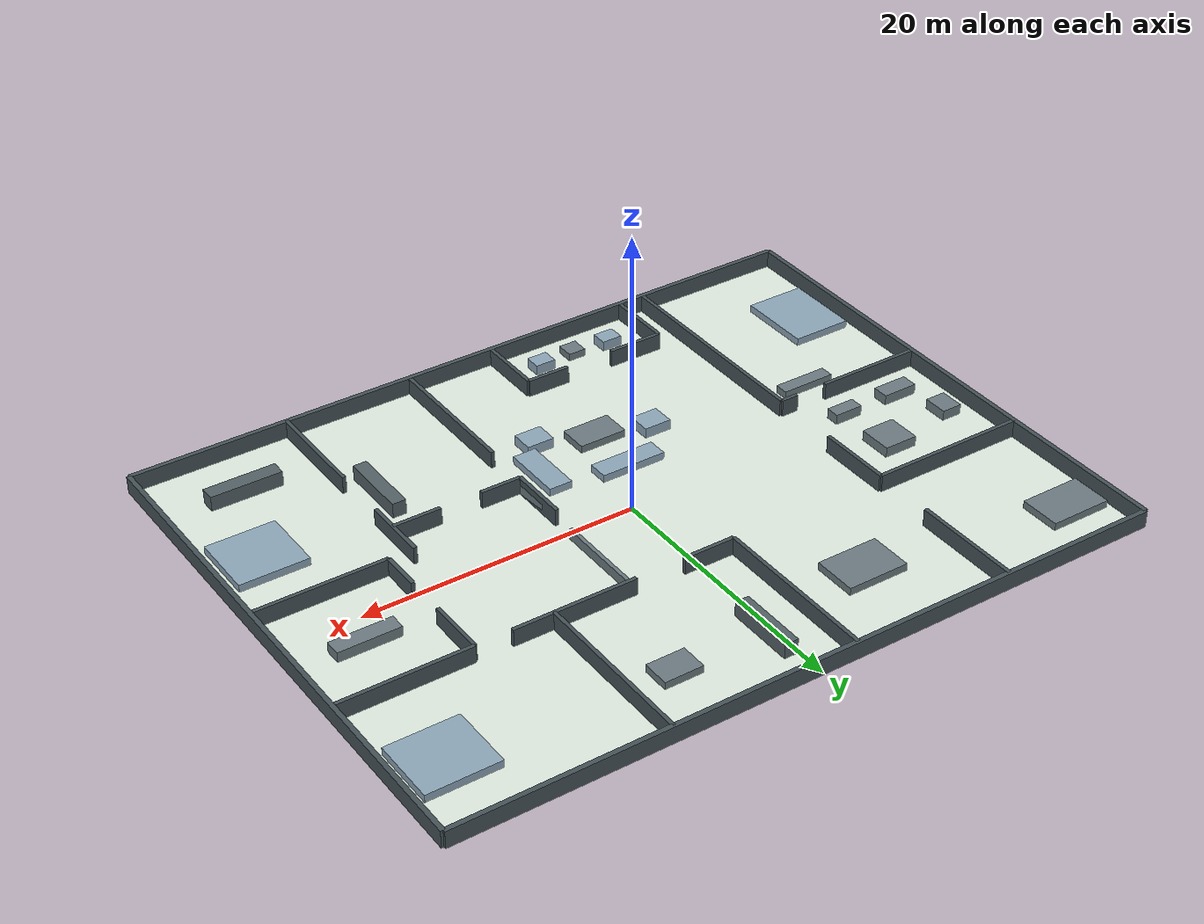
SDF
<?xml version="1.0" ?>
<sdf version="1.6">
  <world name="reference_family_flat">
    <gravity>0 0 -9.8</gravity>
    <scene>
      <ambient>0.65 0.65 0.65 1</ambient>
      <background>0.78 0.84 0.88 1</background>
    </scene>
    <include>
      <uri>model://sun</uri>
    </include>
    <model name="reference_family_flat_floor">
      <static>true</static>
      <pose>0.000 0.000 -0.025 0 0 0</pose>
      <link name="floor_link">
        <collision name="floor_collision">
          <geometry>
            <box><size>52.000 40.000 0.050</size></box>
          </geometry>
        </collision>
        <visual name="floor_visual">
          <geometry>
            <box><size>52.000 40.000 0.050</size></box>
          </geometry>
          <material><ambient>0.88 0.92 0.88 1</ambient><diffuse>0.88 0.92 0.88 1</diffuse></material>
        </visual>
      </link>
    </model>
    <model name="outer_north">
      <static>true</static>
      <pose>0.000 20.000 0.625 0 0 0</pose>
      <link name="outer_north_link">
        <collision name="outer_north_collision">
          <geometry>
            <box><size>52.000 0.350 1.250</size></box>
          </geometry>
        </collision>
        <visual name="outer_north_visual">
          <geometry>
            <box><size>52.000 0.350 1.250</size></box>
          </geometry>
          <material><ambient>0.27 0.32 0.34 1</ambient><diffuse>0.27 0.32 0.34 1</diffuse></material>
        </visual>
      </link>
    </model>
    <model name="outer_south">
      <static>true</static>
      <pose>0.000 -20.000 0.625 0 0 0</pose>
      <link name="outer_south_link">
        <collision name="outer_south_collision">
          <geometry>
            <box><size>52.000 0.350 1.250</size></box>
          </geometry>
        </collision>
        <visual name="outer_south_visual">
          <geometry>
            <box><size>52.000 0.350 1.250</size></box>
          </geometry>
          <material><ambient>0.27 0.32 0.34 1</ambient><diffuse>0.27 0.32 0.34 1</diffuse></material>
        </visual>
      </link>
    </model>
    <model name="outer_west">
      <static>true</static>
      <pose>-26.000 0.000 0.625 0 0 0</pose>
      <link name="outer_west_link">
        <collision name="outer_west_collision">
          <geometry>
            <box><size>0.350 40.000 1.250</size></box>
          </geometry>
        </collision>
        <visual name="outer_west_visual">
          <geometry>
            <box><size>0.350 40.000 1.250</size></box>
          </geometry>
          <material><ambient>0.27 0.32 0.34 1</ambient><diffuse>0.27 0.32 0.34 1</diffuse></material>
        </visual>
      </link>
    </model>
    <model name="outer_east">
      <static>true</static>
      <pose>26.000 0.000 0.625 0 0 0</pose>
      <link name="outer_east_link">
        <collision name="outer_east_collision">
          <geometry>
            <box><size>0.350 40.000 1.250</size></box>
          </geometry>
        </collision>
        <visual name="outer_east_visual">
          <geometry>
            <box><size>0.350 40.000 1.250</size></box>
          </geometry>
          <material><ambient>0.27 0.32 0.34 1</ambient><diffuse>0.27 0.32 0.34 1</diffuse></material>
        </visual>
      </link>
    </model>
    <model name="ref_left_wing_inner_wall_s">
      <static>true</static>
      <pose>-14.500 -11.600 0.625 0 0 0</pose>
      <link name="ref_left_wing_inner_wall_s_link">
        <collision name="ref_left_wing_inner_wall_s_collision">
          <geometry>
            <box><size>0.280 16.800 1.250</size></box>
          </geometry>
        </collision>
        <visual name="ref_left_wing_inner_wall_s_visual">
          <geometry>
            <box><size>0.280 16.800 1.250</size></box>
          </geometry>
          <material><ambient>0.27 0.32 0.34 1</ambient><diffuse>0.27 0.32 0.34 1</diffuse></material>
        </visual>
      </link>
    </model>
    <model name="ref_left_wing_inner_wall_m">
      <static>true</static>
      <pose>-14.500 4.750 0.625 0 0 0</pose>
      <link name="ref_left_wing_inner_wall_m_link">
        <collision name="ref_left_wing_inner_wall_m_collision">
          <geometry>
            <box><size>0.280 5.500 1.250</size></box>
          </geometry>
        </collision>
        <visual name="ref_left_wing_inner_wall_m_visual">
          <geometry>
            <box><size>0.280 5.500 1.250</size></box>
          </geometry>
          <material><ambient>0.27 0.32 0.34 1</ambient><diffuse>0.27 0.32 0.34 1</diffuse></material>
        </visual>
      </link>
    </model>
    <model name="ref_left_wing_inner_wall_n">
      <static>true</static>
      <pose>-14.500 16.000 0.625 0 0 0</pose>
      <link name="ref_left_wing_inner_wall_n_link">
        <collision name="ref_left_wing_inner_wall_n_collision">
          <geometry>
            <box><size>0.280 8.000 1.250</size></box>
          </geometry>
        </collision>
        <visual name="ref_left_wing_inner_wall_n_visual">
          <geometry>
            <box><size>0.280 8.000 1.250</size></box>
          </geometry>
          <material><ambient>0.27 0.32 0.34 1</ambient><diffuse>0.27 0.32 0.34 1</diffuse></material>
        </visual>
      </link>
    </model>
    <model name="ref_kitchen_bath_wall">
      <static>true</static>
      <pose>-20.250 7.500 0.625 0 0 0</pose>
      <link name="ref_kitchen_bath_wall_link">
        <collision name="ref_kitchen_bath_wall_collision">
          <geometry>
            <box><size>11.500 0.280 1.250</size></box>
          </geometry>
        </collision>
        <visual name="ref_kitchen_bath_wall_visual">
          <geometry>
            <box><size>11.500 0.280 1.250</size></box>
          </geometry>
          <material><ambient>0.27 0.32 0.34 1</ambient><diffuse>0.27 0.32 0.34 1</diffuse></material>
        </visual>
      </link>
    </model>
    <model name="ref_bath_guest_wall_w">
      <static>true</static>
      <pose>-22.100 -3.200 0.625 0 0 0</pose>
      <link name="ref_bath_guest_wall_w_link">
        <collision name="ref_bath_guest_wall_w_collision">
          <geometry>
            <box><size>7.800 0.280 1.250</size></box>
          </geometry>
        </collision>
        <visual name="ref_bath_guest_wall_w_visual">
          <geometry>
            <box><size>7.800 0.280 1.250</size></box>
          </geometry>
          <material><ambient>0.27 0.32 0.34 1</ambient><diffuse>0.27 0.32 0.34 1</diffuse></material>
        </visual>
      </link>
    </model>
    <model name="ref_bath_guest_wall_e">
      <static>true</static>
      <pose>-15.150 -3.200 0.625 0 0 0</pose>
      <link name="ref_bath_guest_wall_e_link">
        <collision name="ref_bath_guest_wall_e_collision">
          <geometry>
            <box><size>1.300 0.280 1.250</size></box>
          </geometry>
        </collision>
        <visual name="ref_bath_guest_wall_e_visual">
          <geometry>
            <box><size>1.300 0.280 1.250</size></box>
          </geometry>
          <material><ambient>0.27 0.32 0.34 1</ambient><diffuse>0.27 0.32 0.34 1</diffuse></material>
        </visual>
      </link>
    </model>
    <model name="ref_dining_study_wall">
      <static>true</static>
      <pose>-2.600 13.750 0.625 0 0 0</pose>
      <link name="ref_dining_study_wall_link">
        <collision name="ref_dining_study_wall_collision">
          <geometry>
            <box><size>0.280 12.500 1.250</size></box>
          </geometry>
        </collision>
        <visual name="ref_dining_study_wall_visual">
          <geometry>
            <box><size>0.280 12.500 1.250</size></box>
          </geometry>
          <material><ambient>0.27 0.32 0.34 1</ambient><diffuse>0.27 0.32 0.34 1</diffuse></material>
        </visual>
      </link>
    </model>
    <model name="ref_study_second_bed_wall">
      <static>true</static>
      <pose>10.800 13.750 0.625 0 0 0</pose>
      <link name="ref_study_second_bed_wall_link">
        <collision name="ref_study_second_bed_wall_collision">
          <geometry>
            <box><size>0.280 12.500 1.250</size></box>
          </geometry>
        </collision>
        <visual name="ref_study_second_bed_wall_visual">
          <geometry>
            <box><size>0.280 12.500 1.250</size></box>
          </geometry>
          <material><ambient>0.27 0.32 0.34 1</ambient><diffuse>0.27 0.32 0.34 1</diffuse></material>
        </visual>
      </link>
    </model>
    <model name="ref_study_bottom_wall_w">
      <static>true</static>
      <pose>-0.700 7.500 0.625 0 0 0</pose>
      <link name="ref_study_bottom_wall_w_link">
        <collision name="ref_study_bottom_wall_w_collision">
          <geometry>
            <box><size>3.800 0.280 1.250</size></box>
          </geometry>
        </collision>
        <visual name="ref_study_bottom_wall_w_visual">
          <geometry>
            <box><size>3.800 0.280 1.250</size></box>
          </geometry>
          <material><ambient>0.27 0.32 0.34 1</ambient><diffuse>0.27 0.32 0.34 1</diffuse></material>
        </visual>
      </link>
    </model>
    <model name="ref_study_bottom_wall_e">
      <static>true</static>
      <pose>7.800 7.500 0.625 0 0 0</pose>
      <link name="ref_study_bottom_wall_e_link">
        <collision name="ref_study_bottom_wall_e_collision">
          <geometry>
            <box><size>6.000 0.280 1.250</size></box>
          </geometry>
        </collision>
        <visual name="ref_study_bottom_wall_e_visual">
          <geometry>
            <box><size>6.000 0.280 1.250</size></box>
          </geometry>
          <material><ambient>0.27 0.32 0.34 1</ambient><diffuse>0.27 0.32 0.34 1</diffuse></material>
        </visual>
      </link>
    </model>
    <model name="ref_second_bed_bottom_wall_w">
      <static>true</static>
      <pose>12.300 7.500 0.625 0 0 0</pose>
      <link name="ref_second_bed_bottom_wall_w_link">
        <collision name="ref_second_bed_bottom_wall_w_collision">
          <geometry>
            <box><size>3.000 0.280 1.250</size></box>
          </geometry>
        </collision>
        <visual name="ref_second_bed_bottom_wall_w_visual">
          <geometry>
            <box><size>3.000 0.280 1.250</size></box>
          </geometry>
          <material><ambient>0.27 0.32 0.34 1</ambient><diffuse>0.27 0.32 0.34 1</diffuse></material>
        </visual>
      </link>
    </model>
    <model name="ref_second_bed_bottom_wall_e">
      <static>true</static>
      <pose>21.200 7.500 0.625 0 0 0</pose>
      <link name="ref_second_bed_bottom_wall_e_link">
        <collision name="ref_second_bed_bottom_wall_e_collision">
          <geometry>
            <box><size>9.600 0.280 1.250</size></box>
          </geometry>
        </collision>
        <visual name="ref_second_bed_bottom_wall_e_visual">
          <geometry>
            <box><size>9.600 0.280 1.250</size></box>
          </geometry>
          <material><ambient>0.27 0.32 0.34 1</ambient><diffuse>0.27 0.32 0.34 1</diffuse></material>
        </visual>
      </link>
    </model>
    <model name="ref_closet_top_wall">
      <static>true</static>
      <pose>21.200 7.500 0.625 0 0 0</pose>
      <link name="ref_closet_top_wall_link">
        <collision name="ref_closet_top_wall_collision">
          <geometry>
            <box><size>9.600 0.280 1.250</size></box>
          </geometry>
        </collision>
        <visual name="ref_closet_top_wall_visual">
          <geometry>
            <box><size>9.600 0.280 1.250</size></box>
          </geometry>
          <material><ambient>0.27 0.32 0.34 1</ambient><diffuse>0.27 0.32 0.34 1</diffuse></material>
        </visual>
      </link>
    </model>
    <model name="ref_closet_master_wall">
      <static>true</static>
      <pose>21.200 -2.800 0.625 0 0 0</pose>
      <link name="ref_closet_master_wall_link">
        <collision name="ref_closet_master_wall_collision">
          <geometry>
            <box><size>9.600 0.280 1.250</size></box>
          </geometry>
        </collision>
        <visual name="ref_closet_master_wall_visual">
          <geometry>
            <box><size>9.600 0.280 1.250</size></box>
          </geometry>
          <material><ambient>0.27 0.32 0.34 1</ambient><diffuse>0.27 0.32 0.34 1</diffuse></material>
        </visual>
      </link>
    </model>
    <model name="ref_closet_living_wall_s">
      <static>true</static>
      <pose>16.400 -1.300 0.625 0 0 0</pose>
      <link name="ref_closet_living_wall_s_link">
        <collision name="ref_closet_living_wall_s_collision">
          <geometry>
            <box><size>0.280 3.000 1.250</size></box>
          </geometry>
        </collision>
        <visual name="ref_closet_living_wall_s_visual">
          <geometry>
            <box><size>0.280 3.000 1.250</size></box>
          </geometry>
          <material><ambient>0.27 0.32 0.34 1</ambient><diffuse>0.27 0.32 0.34 1</diffuse></material>
        </visual>
      </link>
    </model>
    <model name="ref_closet_living_wall_n">
      <static>true</static>
      <pose>16.400 5.350 0.625 0 0 0</pose>
      <link name="ref_closet_living_wall_n_link">
        <collision name="ref_closet_living_wall_n_collision">
          <geometry>
            <box><size>0.280 4.300 1.250</size></box>
          </geometry>
        </collision>
        <visual name="ref_closet_living_wall_n_visual">
          <geometry>
            <box><size>0.280 4.300 1.250</size></box>
          </geometry>
          <material><ambient>0.27 0.32 0.34 1</ambient><diffuse>0.27 0.32 0.34 1</diffuse></material>
        </visual>
      </link>
    </model>
    <model name="ref_entry_left_wall_s">
      <static>true</static>
      <pose>5.000 -14.500 0.625 0 0 0</pose>
      <link name="ref_entry_left_wall_s_link">
        <collision name="ref_entry_left_wall_s_collision">
          <geometry>
            <box><size>0.280 11.000 1.250</size></box>
          </geometry>
        </collision>
        <visual name="ref_entry_left_wall_s_visual">
          <geometry>
            <box><size>0.280 11.000 1.250</size></box>
          </geometry>
          <material><ambient>0.27 0.32 0.34 1</ambient><diffuse>0.27 0.32 0.34 1</diffuse></material>
        </visual>
      </link>
    </model>
    <model name="ref_entry_left_wall_n">
      <static>true</static>
      <pose>5.000 -3.400 0.625 0 0 0</pose>
      <link name="ref_entry_left_wall_n_link">
        <collision name="ref_entry_left_wall_n_collision">
          <geometry>
            <box><size>0.280 4.400 1.250</size></box>
          </geometry>
        </collision>
        <visual name="ref_entry_left_wall_n_visual">
          <geometry>
            <box><size>0.280 4.400 1.250</size></box>
          </geometry>
          <material><ambient>0.27 0.32 0.34 1</ambient><diffuse>0.27 0.32 0.34 1</diffuse></material>
        </visual>
      </link>
    </model>
    <model name="ref_entry_right_wall_s">
      <static>true</static>
      <pose>14.500 -16.000 0.625 0 0 0</pose>
      <link name="ref_entry_right_wall_s_link">
        <collision name="ref_entry_right_wall_s_collision">
          <geometry>
            <box><size>0.280 8.000 1.250</size></box>
          </geometry>
        </collision>
        <visual name="ref_entry_right_wall_s_visual">
          <geometry>
            <box><size>0.280 8.000 1.250</size></box>
          </geometry>
          <material><ambient>0.27 0.32 0.34 1</ambient><diffuse>0.27 0.32 0.34 1</diffuse></material>
        </visual>
      </link>
    </model>
    <model name="ref_entry_right_wall_n">
      <static>true</static>
      <pose>14.500 -5.300 0.625 0 0 0</pose>
      <link name="ref_entry_right_wall_n_link">
        <collision name="ref_entry_right_wall_n_collision">
          <geometry>
            <box><size>0.280 5.000 1.250</size></box>
          </geometry>
        </collision>
        <visual name="ref_entry_right_wall_n_visual">
          <geometry>
            <box><size>0.280 5.000 1.250</size></box>
          </geometry>
          <material><ambient>0.27 0.32 0.34 1</ambient><diffuse>0.27 0.32 0.34 1</diffuse></material>
        </visual>
      </link>
    </model>
    <model name="ref_entry_top_wall_w">
      <static>true</static>
      <pose>6.500 -5.600 0.625 0 0 0</pose>
      <link name="ref_entry_top_wall_w_link">
        <collision name="ref_entry_top_wall_w_collision">
          <geometry>
            <box><size>3.000 0.280 1.250</size></box>
          </geometry>
        </collision>
        <visual name="ref_entry_top_wall_w_visual">
          <geometry>
            <box><size>3.000 0.280 1.250</size></box>
          </geometry>
          <material><ambient>0.27 0.32 0.34 1</ambient><diffuse>0.27 0.32 0.34 1</diffuse></material>
        </visual>
      </link>
    </model>
    <model name="ref_entry_top_wall_e">
      <static>true</static>
      <pose>12.750 -5.600 0.625 0 0 0</pose>
      <link name="ref_entry_top_wall_e_link">
        <collision name="ref_entry_top_wall_e_collision">
          <geometry>
            <box><size>3.500 0.280 1.250</size></box>
          </geometry>
        </collision>
        <visual name="ref_entry_top_wall_e_visual">
          <geometry>
            <box><size>3.500 0.280 1.250</size></box>
          </geometry>
          <material><ambient>0.27 0.32 0.34 1</ambient><diffuse>0.27 0.32 0.34 1</diffuse></material>
        </visual>
      </link>
    </model>
    <model name="ref_balcony_top_wall_w">
      <static>true</static>
      <pose>-10.450 -15.000 0.625 0 0 0</pose>
      <link name="ref_balcony_top_wall_w_link">
        <collision name="ref_balcony_top_wall_w_collision">
          <geometry>
            <box><size>4.100 0.280 1.250</size></box>
          </geometry>
        </collision>
        <visual name="ref_balcony_top_wall_w_visual">
          <geometry>
            <box><size>4.100 0.280 1.250</size></box>
          </geometry>
          <material><ambient>0.27 0.32 0.34 1</ambient><diffuse>0.27 0.32 0.34 1</diffuse></material>
        </visual>
      </link>
    </model>
    <model name="ref_balcony_top_wall_e">
      <static>true</static>
      <pose>-3.200 -15.000 0.625 0 0 0</pose>
      <link name="ref_balcony_top_wall_e_link">
        <collision name="ref_balcony_top_wall_e_collision">
          <geometry>
            <box><size>3.200 0.280 1.250</size></box>
          </geometry>
        </collision>
        <visual name="ref_balcony_top_wall_e_visual">
          <geometry>
            <box><size>3.200 0.280 1.250</size></box>
          </geometry>
          <material><ambient>0.27 0.32 0.34 1</ambient><diffuse>0.27 0.32 0.34 1</diffuse></material>
        </visual>
      </link>
    </model>
    <model name="ref_balcony_left_wall">
      <static>true</static>
      <pose>-12.500 -17.500 0.625 0 0 0</pose>
      <link name="ref_balcony_left_wall_link">
        <collision name="ref_balcony_left_wall_collision">
          <geometry>
            <box><size>0.280 5.000 1.250</size></box>
          </geometry>
        </collision>
        <visual name="ref_balcony_left_wall_visual">
          <geometry>
            <box><size>0.280 5.000 1.250</size></box>
          </geometry>
          <material><ambient>0.27 0.32 0.34 1</ambient><diffuse>0.27 0.32 0.34 1</diffuse></material>
        </visual>
      </link>
    </model>
    <model name="ref_balcony_right_wall">
      <static>true</static>
      <pose>-1.600 -17.500 0.625 0 0 0</pose>
      <link name="ref_balcony_right_wall_link">
        <collision name="ref_balcony_right_wall_collision">
          <geometry>
            <box><size>0.280 5.000 1.250</size></box>
          </geometry>
        </collision>
        <visual name="ref_balcony_right_wall_visual">
          <geometry>
            <box><size>0.280 5.000 1.250</size></box>
          </geometry>
          <material><ambient>0.27 0.32 0.34 1</ambient><diffuse>0.27 0.32 0.34 1</diffuse></material>
        </visual>
      </link>
    </model>
    <model name="ref_living_entry_pier_n">
      <static>true</static>
      <pose>5.000 3.950 0.375 0 0 0</pose>
      <link name="ref_living_entry_pier_n_link">
        <collision name="ref_living_entry_pier_n_collision">
          <geometry>
            <box><size>0.280 7.100 0.750</size></box>
          </geometry>
        </collision>
        <visual name="ref_living_entry_pier_n_visual">
          <geometry>
            <box><size>0.280 7.100 0.750</size></box>
          </geometry>
          <material><ambient>0.42 0.48 0.50 1</ambient><diffuse>0.42 0.48 0.50 1</diffuse></material>
        </visual>
      </link>
    </model>
    <model name="ref_living_entry_pier_s">
      <static>true</static>
      <pose>5.000 -4.200 0.375 0 0 0</pose>
      <link name="ref_living_entry_pier_s_link">
        <collision name="ref_living_entry_pier_s_collision">
          <geometry>
            <box><size>0.280 2.800 0.750</size></box>
          </geometry>
        </collision>
        <visual name="ref_living_entry_pier_s_visual">
          <geometry>
            <box><size>0.280 2.800 0.750</size></box>
          </geometry>
          <material><ambient>0.42 0.48 0.50 1</ambient><diffuse>0.42 0.48 0.50 1</diffuse></material>
        </visual>
      </link>
    </model>
    <model name="ref_kitchen_counter">
      <static>true</static>
      <pose>-23.200 15.700 0.275 0 0 0</pose>
      <link name="ref_kitchen_counter_link">
        <collision name="ref_kitchen_counter_collision">
          <geometry>
            <box><size>4.500 3.000 0.550</size></box>
          </geometry>
        </collision>
        <visual name="ref_kitchen_counter_visual">
          <geometry>
            <box><size>4.500 3.000 0.550</size></box>
          </geometry>
          <material><ambient>0.42 0.48 0.50 1</ambient><diffuse>0.42 0.48 0.50 1</diffuse></material>
        </visual>
      </link>
    </model>
    <model name="ref_bath_shower">
      <static>true</static>
      <pose>-18.500 3.500 0.375 0 0 0</pose>
      <link name="ref_bath_shower_link">
        <collision name="ref_bath_shower_collision">
          <geometry>
            <box><size>2.500 2.500 0.750</size></box>
          </geometry>
        </collision>
        <visual name="ref_bath_shower_visual">
          <geometry>
            <box><size>2.500 2.500 0.750</size></box>
          </geometry>
          <material><ambient>0.42 0.48 0.50 1</ambient><diffuse>0.42 0.48 0.50 1</diffuse></material>
        </visual>
      </link>
    </model>
    <model name="ref_bath_toilet">
      <static>true</static>
      <pose>-24.000 2.600 0.375 0 0 0</pose>
      <link name="ref_bath_toilet_link">
        <collision name="ref_bath_toilet_collision">
          <geometry>
            <box><size>1.500 1.800 0.750</size></box>
          </geometry>
        </collision>
        <visual name="ref_bath_toilet_visual">
          <geometry>
            <box><size>1.500 1.800 0.750</size></box>
          </geometry>
          <material><ambient>0.42 0.48 0.50 1</ambient><diffuse>0.42 0.48 0.50 1</diffuse></material>
        </visual>
      </link>
    </model>
    <model name="ref_bath_sink">
      <static>true</static>
      <pose>-22.500 -0.800 0.375 0 0 0</pose>
      <link name="ref_bath_sink_link">
        <collision name="ref_bath_sink_collision">
          <geometry>
            <box><size>2.600 1.200 0.750</size></box>
          </geometry>
        </collision>
        <visual name="ref_bath_sink_visual">
          <geometry>
            <box><size>2.600 1.200 0.750</size></box>
          </geometry>
          <material><ambient>0.42 0.48 0.50 1</ambient><diffuse>0.42 0.48 0.50 1</diffuse></material>
        </visual>
      </link>
    </model>
    <model name="ref_bath_vanity">
      <static>true</static>
      <pose>-18.000 -0.700 0.375 0 0 0</pose>
      <link name="ref_bath_vanity_link">
        <collision name="ref_bath_vanity_collision">
          <geometry>
            <box><size>2.100 1.000 0.750</size></box>
          </geometry>
        </collision>
        <visual name="ref_bath_vanity_visual">
          <geometry>
            <box><size>2.100 1.000 0.750</size></box>
          </geometry>
          <material><ambient>0.42 0.48 0.50 1</ambient><diffuse>0.42 0.48 0.50 1</diffuse></material>
        </visual>
      </link>
    </model>
    <model name="ref_guest_bed">
      <static>true</static>
      <pose>-23.100 -12.500 0.275 0 0 0</pose>
      <link name="ref_guest_bed_link">
        <collision name="ref_guest_bed_collision">
          <geometry>
            <box><size>4.400 5.600 0.550</size></box>
          </geometry>
        </collision>
        <visual name="ref_guest_bed_visual">
          <geometry>
            <box><size>4.400 5.600 0.550</size></box>
          </geometry>
          <material><ambient>0.55 0.65 0.72 1</ambient><diffuse>0.55 0.65 0.72 1</diffuse></material>
        </visual>
      </link>
    </model>
    <model name="ref_guest_desk">
      <static>true</static>
      <pose>-18.000 -5.200 0.275 0 0 0</pose>
      <link name="ref_guest_desk_link">
        <collision name="ref_guest_desk_collision">
          <geometry>
            <box><size>4.000 1.000 0.550</size></box>
          </geometry>
        </collision>
        <visual name="ref_guest_desk_visual">
          <geometry>
            <box><size>4.000 1.000 0.550</size></box>
          </geometry>
          <material><ambient>0.42 0.48 0.50 1</ambient><diffuse>0.42 0.48 0.50 1</diffuse></material>
        </visual>
      </link>
    </model>
    <model name="ref_dining_table">
      <static>true</static>
      <pose>-8.200 13.500 0.275 0 0 0</pose>
      <link name="ref_dining_table_link">
        <collision name="ref_dining_table_collision">
          <geometry>
            <box><size>4.500 3.200 0.550</size></box>
          </geometry>
        </collision>
        <visual name="ref_dining_table_visual">
          <geometry>
            <box><size>4.500 3.200 0.550</size></box>
          </geometry>
          <material><ambient>0.42 0.48 0.50 1</ambient><diffuse>0.42 0.48 0.50 1</diffuse></material>
        </visual>
      </link>
    </model>
    <model name="ref_study_desk">
      <static>true</static>
      <pose>7.200 15.000 0.275 0 0 0</pose>
      <link name="ref_study_desk_link">
        <collision name="ref_study_desk_collision">
          <geometry>
            <box><size>2.800 2.000 0.550</size></box>
          </geometry>
        </collision>
        <visual name="ref_study_desk_visual">
          <geometry>
            <box><size>2.800 2.000 0.550</size></box>
          </geometry>
          <material><ambient>0.42 0.48 0.50 1</ambient><diffuse>0.42 0.48 0.50 1</diffuse></material>
        </visual>
      </link>
    </model>
    <model name="ref_study_bookshelf">
      <static>true</static>
      <pose>0.600 15.200 0.550 0 0 0</pose>
      <link name="ref_study_bookshelf_link">
        <collision name="ref_study_bookshelf_collision">
          <geometry>
            <box><size>1.000 5.000 1.100</size></box>
          </geometry>
        </collision>
        <visual name="ref_study_bookshelf_visual">
          <geometry>
            <box><size>1.000 5.000 1.100</size></box>
          </geometry>
          <material><ambient>0.33 0.38 0.40 1</ambient><diffuse>0.33 0.38 0.40 1</diffuse></material>
        </visual>
      </link>
    </model>
    <model name="ref_second_bed">
      <static>true</static>
      <pose>22.500 14.000 0.275 0 0 0</pose>
      <link name="ref_second_bed_link">
        <collision name="ref_second_bed_collision">
          <geometry>
            <box><size>5.200 4.800 0.550</size></box>
          </geometry>
        </collision>
        <visual name="ref_second_bed_visual">
          <geometry>
            <box><size>5.200 4.800 0.550</size></box>
          </geometry>
          <material><ambient>0.55 0.65 0.72 1</ambient><diffuse>0.55 0.65 0.72 1</diffuse></material>
        </visual>
      </link>
    </model>
    <model name="ref_closet_storage">
      <static>true</static>
      <pose>21.000 2.400 0.375 0 0 0</pose>
      <link name="ref_closet_storage_link">
        <collision name="ref_closet_storage_collision">
          <geometry>
            <box><size>4.500 1.200 0.750</size></box>
          </geometry>
        </collision>
        <visual name="ref_closet_storage_visual">
          <geometry>
            <box><size>4.500 1.200 0.750</size></box>
          </geometry>
          <material><ambient>0.42 0.48 0.50 1</ambient><diffuse>0.42 0.48 0.50 1</diffuse></material>
        </visual>
      </link>
    </model>
    <model name="ref_master_bed">
      <static>true</static>
      <pose>22.500 -8.800 0.275 0 0 0</pose>
      <link name="ref_master_bed_link">
        <collision name="ref_master_bed_collision">
          <geometry>
            <box><size>5.000 4.800 0.550</size></box>
          </geometry>
        </collision>
        <visual name="ref_master_bed_visual">
          <geometry>
            <box><size>5.000 4.800 0.550</size></box>
          </geometry>
          <material><ambient>0.55 0.65 0.72 1</ambient><diffuse>0.55 0.65 0.72 1</diffuse></material>
        </visual>
      </link>
    </model>
    <model name="ref_master_cabinet">
      <static>true</static>
      <pose>20.000 -15.600 0.550 0 0 0</pose>
      <link name="ref_master_cabinet_link">
        <collision name="ref_master_cabinet_collision">
          <geometry>
            <box><size>5.200 1.100 1.100</size></box>
          </geometry>
        </collision>
        <visual name="ref_master_cabinet_visual">
          <geometry>
            <box><size>5.200 1.100 1.100</size></box>
          </geometry>
          <material><ambient>0.33 0.38 0.40 1</ambient><diffuse>0.33 0.38 0.40 1</diffuse></material>
        </visual>
      </link>
    </model>
    <model name="ref_living_sofa">
      <static>true</static>
      <pose>-2.500 -4.200 0.275 0 0 0</pose>
      <link name="ref_living_sofa_link">
        <collision name="ref_living_sofa_collision">
          <geometry>
            <box><size>4.800 1.500 0.550</size></box>
          </geometry>
        </collision>
        <visual name="ref_living_sofa_visual">
          <geometry>
            <box><size>4.800 1.500 0.550</size></box>
          </geometry>
          <material><ambient>0.55 0.65 0.72 1</ambient><diffuse>0.55 0.65 0.72 1</diffuse></material>
        </visual>
      </link>
    </model>
    <model name="ref_living_sofa_e">
      <static>true</static>
      <pose>2.800 -6.400 0.275 0 0 0</pose>
      <link name="ref_living_sofa_e_link">
        <collision name="ref_living_sofa_e_collision">
          <geometry>
            <box><size>1.700 4.500 0.550</size></box>
          </geometry>
        </collision>
        <visual name="ref_living_sofa_e_visual">
          <geometry>
            <box><size>1.700 4.500 0.550</size></box>
          </geometry>
          <material><ambient>0.55 0.65 0.72 1</ambient><diffuse>0.55 0.65 0.72 1</diffuse></material>
        </visual>
      </link>
    </model>
    <model name="ref_living_chair_w">
      <static>true</static>
      <pose>-6.300 -7.000 0.375 0 0 0</pose>
      <link name="ref_living_chair_w_link">
        <collision name="ref_living_chair_w_collision">
          <geometry>
            <box><size>2.000 1.700 0.750</size></box>
          </geometry>
        </collision>
        <visual name="ref_living_chair_w_visual">
          <geometry>
            <box><size>2.000 1.700 0.750</size></box>
          </geometry>
          <material><ambient>0.55 0.65 0.72 1</ambient><diffuse>0.55 0.65 0.72 1</diffuse></material>
        </visual>
      </link>
    </model>
    <model name="ref_living_chair_e">
      <static>true</static>
      <pose>1.400 -9.600 0.375 0 0 0</pose>
      <link name="ref_living_chair_e_link">
        <collision name="ref_living_chair_e_collision">
          <geometry>
            <box><size>2.000 1.700 0.750</size></box>
          </geometry>
        </collision>
        <visual name="ref_living_chair_e_visual">
          <geometry>
            <box><size>2.000 1.700 0.750</size></box>
          </geometry>
          <material><ambient>0.55 0.65 0.72 1</ambient><diffuse>0.55 0.65 0.72 1</diffuse></material>
        </visual>
      </link>
    </model>
    <model name="ref_living_table">
      <static>true</static>
      <pose>-2.500 -8.200 0.275 0 0 0</pose>
      <link name="ref_living_table_link">
        <collision name="ref_living_table_collision">
          <geometry>
            <box><size>3.500 2.200 0.550</size></box>
          </geometry>
        </collision>
        <visual name="ref_living_table_visual">
          <geometry>
            <box><size>3.500 2.200 0.550</size></box>
          </geometry>
          <material><ambient>0.42 0.48 0.50 1</ambient><diffuse>0.42 0.48 0.50 1</diffuse></material>
        </visual>
      </link>
    </model>
    <model name="ref_balcony_chair_w">
      <static>true</static>
      <pose>-9.800 -17.500 0.375 0 0 0</pose>
      <link name="ref_balcony_chair_w_link">
        <collision name="ref_balcony_chair_w_collision">
          <geometry>
            <box><size>1.500 1.200 0.750</size></box>
          </geometry>
        </collision>
        <visual name="ref_balcony_chair_w_visual">
          <geometry>
            <box><size>1.500 1.200 0.750</size></box>
          </geometry>
          <material><ambient>0.55 0.65 0.72 1</ambient><diffuse>0.55 0.65 0.72 1</diffuse></material>
        </visual>
      </link>
    </model>
    <model name="ref_balcony_chair_e">
      <static>true</static>
      <pose>-4.200 -17.500 0.375 0 0 0</pose>
      <link name="ref_balcony_chair_e_link">
        <collision name="ref_balcony_chair_e_collision">
          <geometry>
            <box><size>1.500 1.200 0.750</size></box>
          </geometry>
        </collision>
        <visual name="ref_balcony_chair_e_visual">
          <geometry>
            <box><size>1.500 1.200 0.750</size></box>
          </geometry>
          <material><ambient>0.55 0.65 0.72 1</ambient><diffuse>0.55 0.65 0.72 1</diffuse></material>
        </visual>
      </link>
    </model>
    <model name="ref_balcony_table">
      <static>true</static>
      <pose>-7.000 -17.800 0.275 0 0 0</pose>
      <link name="ref_balcony_table_link">
        <collision name="ref_balcony_table_collision">
          <geometry>
            <box><size>1.300 1.300 0.550</size></box>
          </geometry>
        </collision>
        <visual name="ref_balcony_table_visual">
          <geometry>
            <box><size>1.300 1.300 0.550</size></box>
          </geometry>
          <material><ambient>0.42 0.48 0.50 1</ambient><diffuse>0.42 0.48 0.50 1</diffuse></material>
        </visual>
      </link>
    </model>
    <model name="ref_entry_cabinet">
      <static>true</static>
      <pose>12.800 -10.400 0.550 0 0 0</pose>
      <link name="ref_entry_cabinet_link">
        <collision name="ref_entry_cabinet_collision">
          <geometry>
            <box><size>1.000 5.200 1.100</size></box>
          </geometry>
        </collision>
        <visual name="ref_entry_cabinet_visual">
          <geometry>
            <box><size>1.000 5.200 1.100</size></box>
          </geometry>
          <material><ambient>0.33 0.38 0.40 1</ambient><diffuse>0.33 0.38 0.40 1</diffuse></material>
        </visual>
      </link>
    </model>
  </world>
</sdf>
